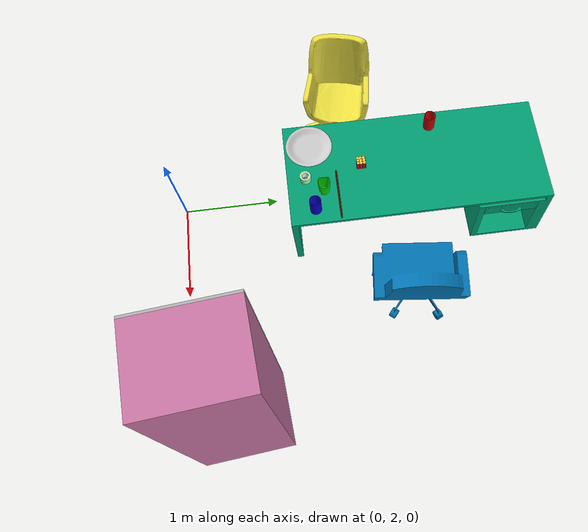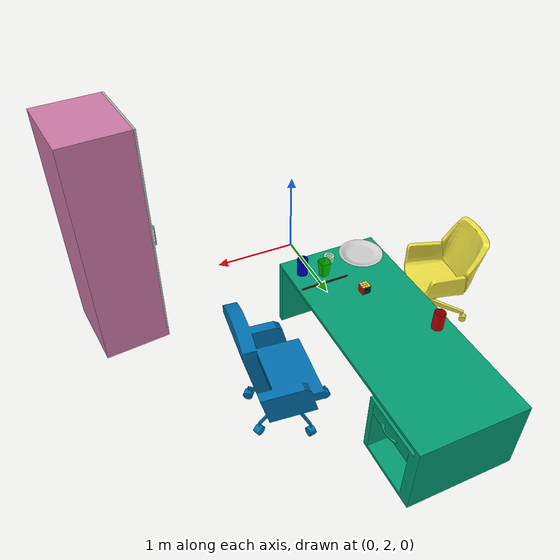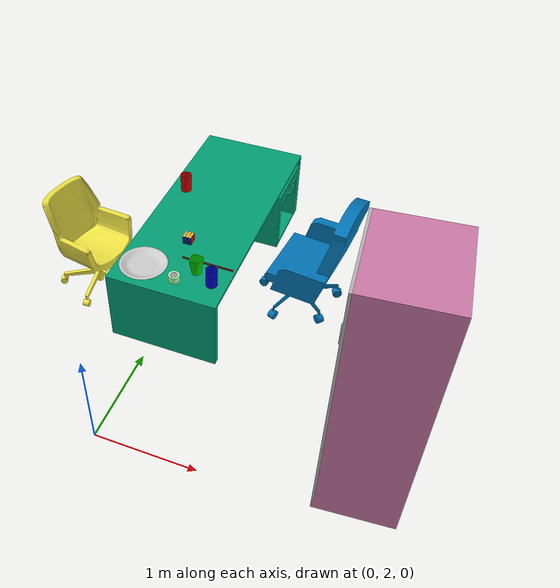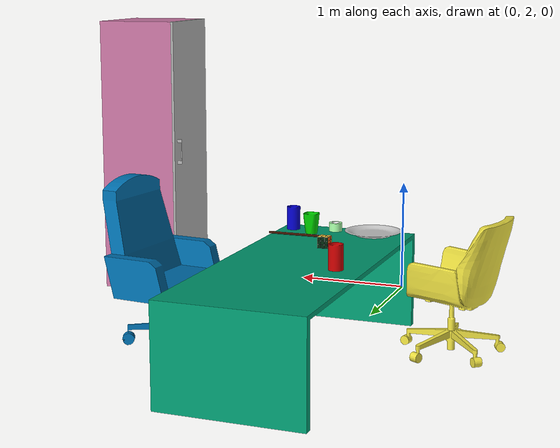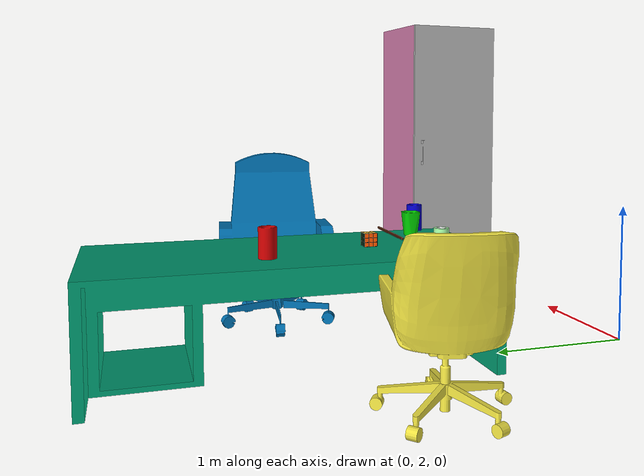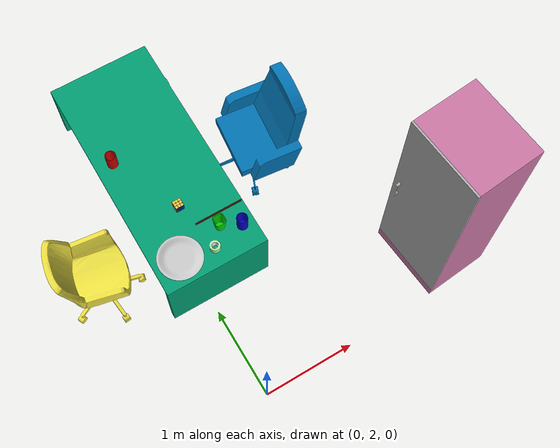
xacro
<?xml version='1.0' encoding='UTF-8'?>
<robot xmlns:xacro="http://ros.org/wiki/xacro" name="bigai_tamp_demo">

  <link name="world"/>
  <xacro:include filename="$(find scene_builder)/output/bigai_tamp_demo/rigid_objects.xacro"/>
  <xacro:create_rigid_objects parent="world"/>

  <xacro:include filename="$(find scene_builder)/output/bigai_tamp_demo/assets/interactive/cabinet_0001/cabinet_0001.xacro"/>
  <xacro:cabinet_0001 ns_prefix="Cabinet_417_link" parent="Background_1_link" joint_type="fixed" xyz="2.3 -0.85 2.1" rpy="1.57 3.05 0" scale_x="2.5" scale_y="3.0" scale_z="2.5" mesh_dir="output/bigai_tamp_demo/assets/interactive/cabinet_0001"/>

</robot>

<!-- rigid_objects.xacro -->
<robot xmlns:xacro="http://ros.org/wiki/xacro" name="create_rigid_objects">

  <xacro:macro name="create_rigid_objects" params="parent">
    <link name="Room_0_link">
    </link>

    <joint name="${parent}_Room_0_joint" type="fixed">
      <origin xyz="0.0 0.0 0.4" rpy="-1.5707961284087422 0.0 -0.0"/>
      <parent link="${parent}"/>
      <child link="Room_0_link"/>
    </joint>

    <link name="Background_1_link">
    </link>
    <joint name="Room_0_Background_1_joint" type="fixed">
      <origin xyz="0.0 0.0 0.4" rpy="0.0 0.0 0.0"/>
      <parent link="Room_0_link"/>
      <child link="Background_1_link"/>
    </joint>

    <link name="Cup_1_link">
      <visual>
        <origin xyz="0 0 0" rpy="0 0 0"/>
        <geometry>
          <mesh filename="package://scene_builder/output/bigai_tamp_demo/assets/rigid/cup_blue.dae" scale="1.6015 1.6015 1.6015"/>
        </geometry>
      </visual>
      <collision>
        <origin xyz="-0.0573 0.0 -0.0573" rpy="0 0 0"/>
        <geometry>
          <mesh filename="package://scene_builder/output/bigai_tamp_demo/assets/rigid/cup4.obj" scale="0.00165 0.00165 0.00165"/>
        </geometry>
      </collision>
      <inertial>
        <origin xyz="0 0 0" rpy="0 0 0"/>
        <mass value="5.0"/>
        <inertia ixx="1.0" ixy="0.0" ixz="0.0" iyy="1.0" iyz="0.0" izz="1.0"/>
      </inertial>
    </link>
    <joint name="Table_5_Cup_1_joint" type="fixed">
      <origin xyz="-1.05 -0.4 0.41" rpy="1.57 0.0 -1.57"/>
      <parent link="Table_5_link"/>
      <child link="Cup_1_link"/>
    </joint>

    <link name="Cup_2_link">
      <visual>
        <origin xyz="0 0 0" rpy="0 0 0"/>
        <geometry>
          <mesh filename="package://scene_builder/output/bigai_tamp_demo/assets/rigid/cup_green.dae" scale="1.0 1.0 1.0"/>
        </geometry>
      </visual>
      <collision>
        <origin xyz="0.065 0.175 -0.067" rpy="0 0 3.14"/>
        <geometry>
          <mesh filename="package://scene_builder/output/bigai_tamp_demo/assets/rigid/cup_green.obj" scale="0.00165 0.00165 0.00165"/>
        </geometry>
      </collision>
      <inertial>
        <origin xyz="0 0 0" rpy="0 0 0"/>
        <mass value="5.0"/>
        <inertia ixx="1.0" ixy="0.0" ixz="0.0" iyy="1.0" iyz="0.0" izz="1.0"/>
      </inertial>
    </link>
    <joint name="Table_5_Cup_2_joint" type="fixed">
      <origin xyz="-0.95 -0.2 0.41" rpy="1.57 0.0 -1.57"/>
      <parent link="Table_5_link"/>
      <child link="Cup_2_link"/>
    </joint>

    <link name="Tape_1_link">
      <visual>
        <origin xyz="0 0 0" rpy="0 0 0"/>
        <geometry>
          <mesh filename="package://scene_builder/output/bigai_tamp_demo/assets/rigid/tape.dae" scale="1.4015 1.4025 2.5015"/>
        </geometry>
      </visual>
      <collision>
        <origin xyz="0 0 0.0" rpy="0 0 0"/>
        <geometry>
          <cylinder length="0.0745" radius="0.0562"/>
        </geometry>
      </collision>
      <inertial>
        <origin xyz="0 0 0" rpy="0 0 0"/>
        <mass value="5.0"/>
        <inertia ixx="1.0" ixy="0.0" ixz="0.0" iyy="1.0" iyz="0.0" izz="1.0"/>
      </inertial>
    </link>
    <joint name="Table_5_Tape_1_joint" type="fixed">
      <origin xyz="-1.12 -0.05 0.4405" rpy="0 0.0 -1.57"/>
      <parent link="Table_5_link"/>
      <child link="Tape_1_link"/>
    </joint>

    <link name="Cup_4_link">
      <visual>
        <origin xyz="0 0 0" rpy="0 0 0"/>
        <geometry>
          <mesh filename="package://scene_builder/output/bigai_tamp_demo/assets/rigid/cup_red.dae" scale="1.6015 1.6015 1.6015"/>
        </geometry>
      </visual>
      <collision>
        <origin xyz="-0.0573 0.0 -0.0573" rpy="0 0 0"/>
        <geometry>
          <mesh filename="package://scene_builder/output/bigai_tamp_demo/assets/rigid/cup4.obj" scale="0.00165 0.00165 0.00165"/>
        </geometry>
      </collision>
      <inertial>
        <origin xyz="0 0 0" rpy="0 0 0"/>
        <mass value="5.0"/>
        <inertia ixx="1.0" ixy="0.0" ixz="0.0" iyy="1.0" iyz="0.0" izz="1.0"/>
      </inertial>
    </link>
    <joint name="Table_5_Cup_4_joint" type="fixed">
      <origin xyz="0.2 0.4 0.42" rpy="1.57 0.0 -1.57"/>
      <parent link="Table_5_link"/>
      <child link="Cup_4_link"/>
    </joint>

    <link name="Rubik_cube_1_link">
      <visual>
        <origin xyz="0 0 0" rpy="0 0 0"/>
        <geometry>
          <mesh filename="package://scene_builder/output/bigai_tamp_demo/assets/rigid/rubik_cube.dae" scale="3.002 3.002 3.002"/>
        </geometry>
      </visual>
      <collision>
        <origin xyz="0 0 0" rpy="0 0 0"/>
        <geometry>
          <box size="0.093 0.093 0.093"/>
        </geometry>
      </collision>
      <inertial>
        <origin xyz="0 0 0" rpy="0 0 0"/>
        <mass value="5.0"/>
        <inertia ixx="1.0" ixy="0.0" ixz="0.0" iyy="1.0" iyz="0.0" izz="1.0"/>
      </inertial>

    </link>
    <joint name="Table_5_rubik_cube_1_joint" type="fixed">
      <origin xyz="-0.55 0.05 0.440" rpy="1.57 0.0 -1.570"/>
      <parent link="Table_5_link"/>
      <child link="Rubik_cube_1_link"/>v
    </joint>

    <link name="Plate_1_link">
      <visual>
        <origin xyz="0 0 0" rpy="0 0 0"/>
        <geometry>
          <mesh filename="package://scene_builder/output/bigai_tamp_demo/assets/rigid/plate.dae" scale="3.0 3.0 3.0"/>
        </geometry>
      </visual>
      <collision>
        <origin xyz="-0.237 0.0 -0.237" rpy="0 0 0"/>
        <geometry>
          <mesh filename="package://scene_builder/output/bigai_tamp_demo/assets/rigid/plate.obj" scale="0.00242 0.00242 0.00242"/>
        </geometry>
      </collision>
      <inertial>
        <origin xyz="0 0 0" rpy="0 0 0"/>
        <mass value="5.0"/>
        <inertia ixx="1.0" ixy="0.0" ixz="0.0" iyy="1.0" iyz="0.0" izz="1.0"/>
      </inertial>
    </link>
    <joint name="Table_5_plate_1_joint" type="fixed">
      <origin xyz="-1.05 0.30 0.41" rpy="1.57 0.0 -1.57"/>
      <parent link="Table_5_link"/>
      <child link="Plate_1_link"/>
    </joint>

    <link name="Stick_1_link">
      <visual>
        <origin xyz="0 0 0" rpy="0 0 0"/>
        <geometry>
          <mesh filename="package://scene_builder/output/bigai_tamp_demo/assets/rigid/stick.dae" scale="2 2 5"/>
        </geometry>
      </visual>
      <collision>
        <origin xyz="-0.0015 -0.0025 0.0" rpy="-1.57 0 0"/>
        <geometry>
          <mesh filename="package://scene_builder/output/bigai_tamp_demo/assets/rigid/stick.obj" scale="0.0008 0.00175 0.0008"/>
        </geometry>
      </collision>
      <inertial>
        <origin xyz="0 0 0" rpy="0 0 0"/>
        <mass value="5.0"/>
        <inertia ixx="1.0" ixy="0.0" ixz="0.0" iyy="1.0" iyz="0.0" izz="1.0"/>
      </inertial>
    </link>
    <joint name="Table_5_stick_1_joint" type="fixed">
      <origin xyz="-0.8 -0.0 0.4105" rpy="1.57 0.0 3.14"/>
      <parent link="Table_5_link"/>
      <child link="Stick_1_link"/>
    </joint>

    <link name="Table_5_link">
      <visual>
        <origin xyz="0 0 0" rpy="0 0 0"/>
        <geometry>
          <mesh filename="package://scene_builder/output/bigai_tamp_demo/assets/rigid/6c3fd211ccf0789c2846fa729d90e125.obj" scale="2.0202600002288818 1.6202600002288818 1.1202600002288818"/>
        </geometry>
      </visual>
      <collision>
        <origin xyz="0 0 0" rpy="0 0 0"/>
        <geometry>
          <mesh filename="package://scene_builder/output/bigai_tamp_demo/assets/rigid/6c3fd211ccf0789c2846fa729d90e125.obj" scale="2.0202600002288818 1.6202600002288818 1.1202600002288818"/>
        </geometry>
      </collision>
      <inertial>
        <origin xyz="0 0 0" rpy="0 0 0"/>
        <mass value="5.0"/>
        <inertia ixx="1.0" ixy="0.0" ixz="0.0" iyy="1.0" iyz="0.0" izz="1.0"/>
      </inertial>
    </link>
    <joint name="Background_1_Table_5_joint" type="fixed">
      <origin xyz="0.16131589487195015 0.0 4.07349289894104" rpy="1.5707961284087422 -1.5707961284087422 0"/>
      <parent link="Background_1_link"/>
      <child link="Table_5_link"/>
    </joint>
    <!-- wanglei-albert@2021-11-12: temporarily comment off for accelerating loading scene -->

    <link name="Chair_645_link">
      <visual>
        <origin xyz="0 0 0" rpy="0 0 0"/>
        <geometry>
          <mesh filename="package://scene_builder/output/bigai_tamp_demo/assets/rigid/374e87fdee7711491e046801e2748f1a.obj" scale="1 1 1"/>
        </geometry>
      </visual>
      <collision>
        <origin xyz="0 0 0" rpy="0 0 0"/>
        <geometry>
          <mesh filename="package://scene_builder/output/bigai_tamp_demo/assets/rigid/374e87fdee7711491e046801e2748f1a.obj" scale="1 1 1"/>
        </geometry>
      </collision>
      <inertial>
        <origin xyz="0 0 0" rpy="0 0 0"/>
        <mass value="5.0"/>
        <inertia ixx="1.0" ixy="0.0" ixz="0.0" iyy="1.0" iyz="0.0" izz="1.0"/>
      </inertial>
    </link>
    <joint name="Floor_369_Chair_645_joint" type="fixed">
      <origin xyz="-0.9 -0.155 3.4" rpy="1.57 -1.37 0"/>
      <parent link="Floor_369_link"/>
      <child link="Chair_645_link"/>
    </joint>

    <link name="Chair_315_link">
      <visual>
        <origin xyz="0 0 0" rpy="0 0 0"/>
        <geometry>
          <mesh filename="package://scene_builder/output/bigai_tamp_demo/assets/rigid/32b56fa66c73c450a86b76551c6a3b2b.obj" scale="1.4 1.4 1.4"/>
        </geometry>
      </visual>
      <collision>
        <origin xyz="0 0 0" rpy="0 0 0"/>
        <geometry>
          <mesh filename="package://scene_builder/output/bigai_tamp_demo/assets/rigid/32b56fa66c73c450a86b76551c6a3b2b.obj" scale="1.4 1.4 1.4"/>
        </geometry>
      </collision>
      <inertial>
        <origin xyz="0 0 0" rpy="0 0 0"/>
        <mass value="5.0"/>
        <inertia ixx="1.0" ixy="0.0" ixz="0.0" iyy="1.0" iyz="0.0" izz="1.0"/>
      </inertial>
    </link>
    <joint name="Floor_369_Chair_315_joint" type="fixed">
      <origin xyz="1.2 -0.28 3.95" rpy="1.57 1.68 0"/>
      <parent link="Floor_369_link"/>
      <child link="Chair_315_link"/>
    </joint>

    <link name="Floor_369_link">
      <inertial>
        <origin xyz="0 0 0" rpy="0 0 0"/>
        <mass value="5.0"/>
        <inertia ixx="1.0" ixy="0.0" ixz="0.0" iyy="1.0" iyz="0.0" izz="1.0"/>
      </inertial>
    </link>
    <joint name="Room_0_Floor_369_joint" type="fixed">
      <origin xyz="0.0 0.0 0.4" rpy="0.0 -0.0 0.0"/>
      <parent link="Room_0_link"/>
      <child link="Floor_369_link"/>
    </joint>
  </xacro:macro>
</robot>

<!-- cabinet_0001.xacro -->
<robot name="cabinet_0001_robot" xmlns:xacro="http://ros.org/wiki/xacro">

<xacro:macro name="cabinet_0001" params="ns_prefix parent joint_type xyz rpy scale_x scale_y scale_z mesh_dir:=assets/interactive/cabinet_0001">

    <!-- cabinet_0001 -->
    <link name="${ns_prefix}">
        <inertial>
            <origin xyz="0 0 0" />
            <mass value="33.18129099222546" />
            <inertia ixx="0.0" ixy="0.0" ixz="0.0" iyy="0.0" iyz="0.0" izz="0.0" />
        </inertial>
        <visual>
            <origin xyz="0 0 0" />
            <geometry>
                <mesh filename="package://scene_builder/${mesh_dir}/none_motion.obj" rpy="0 0 0" scale="${scale_x} ${scale_y} ${scale_z}" />
            </geometry>
        </visual>
    </link>

    <joint name="${ns_prefix}_joint_structure" type="${joint_type}">
        <origin xyz="${xyz}" rpy="${rpy}" />
        <parent link="${parent}" />
        <child link="${ns_prefix}" />
    </joint>

    <link name="${ns_prefix}_dof_rootd_Bb001_r">
        <inertial>
            <origin xyz="${-0.129865 * scale_x} ${-0.138132 * scale_y} ${-0.0233064 * scale_z}" />
            <mass value="4.60682560178928" />
            <inertia ixx="0.0" ixy="0.0" ixz="0.0" iyy="0.0" iyz="0.0" izz="0.0" />
        </inertial>
        <visual>
            <origin xyz="${-0.129865 * scale_x} ${-0.138132 * scale_y} ${-0.0233064 * scale_z}" />
            <geometry>
                <mesh filename="package://scene_builder/${mesh_dir}/dof_rootd_Bb001_r.obj" rpy="0 0 0" scale="${scale_x} ${scale_y} ${scale_z}" />
            </geometry>
        </visual>
        <collision>
            <origin xyz="${-0.129865 * scale_x} ${-0.138132 * scale_y} ${-0.0233064 * scale_z}" />
            <geometry>
                <mesh filename="package://scene_builder/${mesh_dir}/dof_rootd_Bb001_r.obj" rpy="0 0 0" scale="${scale_x} ${scale_y} ${scale_z}" />
            </geometry>
        </collision>
    </link>

    <joint name="${ns_prefix}_dof_rootd_Bb001_r_joint" type="revolute">
        <origin xyz="${0.129865 * scale_x} ${0.138132 * scale_y} ${0.0233064 * scale_z}" rpy="0 0 0" />
        <parent link="${ns_prefix}" />
        <child link="${ns_prefix}_dof_rootd_Bb001_r" />
        <axis xyz="0.0 2.22045e-16 1.0" />
        <dynamics friction="0.4794564749794503" />
        <limit effort="0.0" velocity="0.5" lower="0.0" upper="3.14"/>
    </joint>

</xacro:macro>

</robot>
